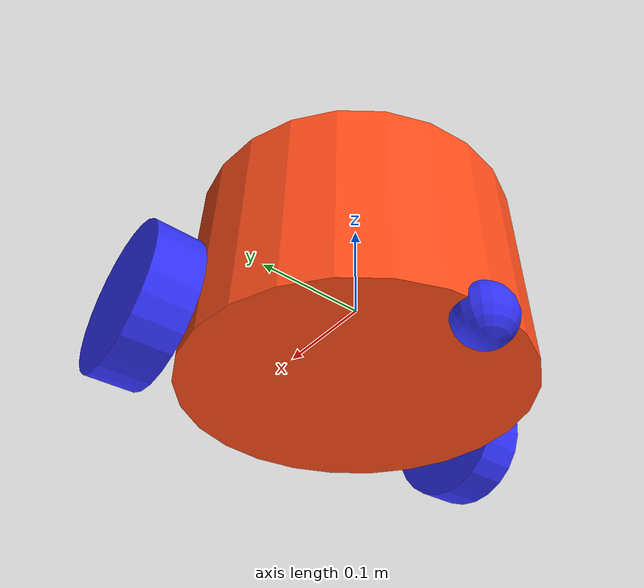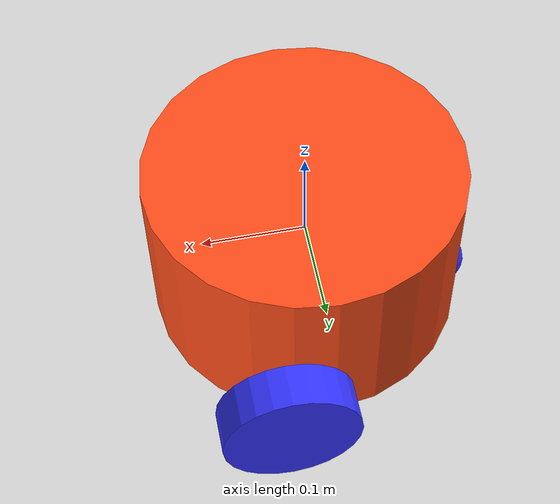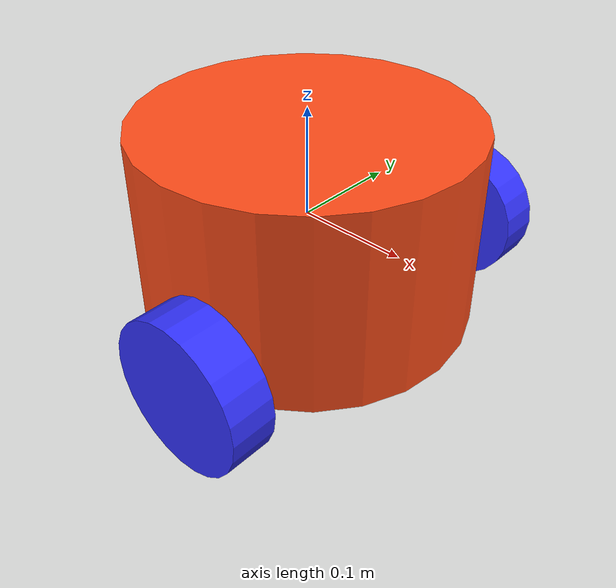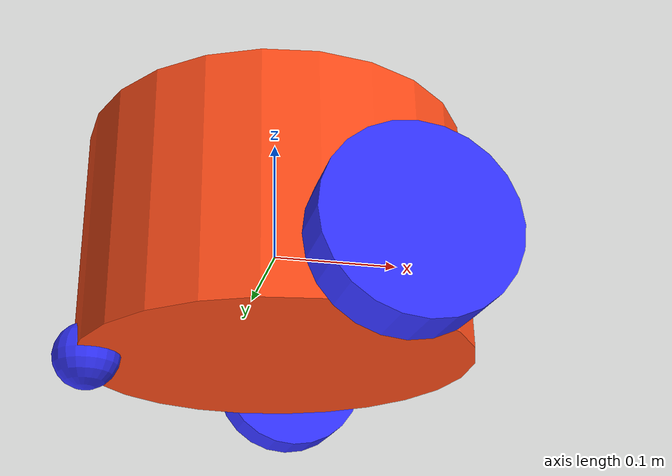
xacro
<?xml version="1.0" ?>
<robot xmlns:xacro="http://ros.org/wiki/xacro">
    <xacro:include filename="robot_constants.xacro" />
    <xacro:include filename="inertial_macros.xacro" />

    <!-- Robot Base -->
    <link name="base_link">
        <visual>
            <geometry>
                <cylinder radius="${base_length/2}" length="${base_height}" />
            </geometry>
            <material name="orange">
                <color rgba="1 0.3 0.1 1" />
            </material>
        </visual>

        <collision>
        <geometry>
            <box size="${base_length/1.25} ${base_width/1.25} ${base_height}" />
        </geometry>
        </collision>

        <xacro:box_inertia
            m="15"
            w="${base_width}"
            d="${base_length}"
            h="${base_height}"
        />
    </link>

    <gazebo reference="base_link">
        <material>Gazebo/Orange</material>
    </gazebo>

    <!-- Robot Footprint -->
    <link name="base_footprint">
        <xacro:box_inertia m="0" w="0" d="0" h="0" />
    </link>

    <joint name="base_joint" type="fixed">
        <parent link="base_link" />
        <child link="base_footprint" />
        <origin xyz="0.0 0.0 ${-(wheel_radius+wheel_zoff)}" rpy="0 0 0" />
    </joint>

    <!-- Wheels -->
    <xacro:macro name="wheel" params="prefix x_reflect y_reflect">
        <link name="${prefix}_link">
        <visual>
            <origin xyz="0 0 0" rpy="${pi/2} 0 0" />
            <geometry>
            <cylinder radius="${wheel_radius}" length="${wheel_width}" />
            </geometry>
            <material name="blue">
                <color rgba="0.2 0.2 1 1" />
            </material>
        </visual>

        <collision>
            <origin xyz="0 0 0" rpy="${pi/2} 0 0" />
            <geometry>
            <sphere radius="${wheel_radius}" />
            </geometry>
        </collision>

        <xacro:cylinder_inertia
                m="0.5"
                r="${wheel_radius}"
                h="${wheel_width}"
            />
        </link>

        <joint name="${prefix}_joint" type="continuous">
        <parent link="base_link" />
        <child link="${prefix}_link" />
        <origin
                xyz="${x_reflect*wheel_xoff} ${y_reflect*(base_width/2+wheel_ygap)} ${-wheel_zoff}"
                rpy="0 0 0"
            />
        <axis xyz="0 1 0" />
        </joint>
    </xacro:macro>

    <xacro:wheel prefix="drivewhl_l" x_reflect="1" y_reflect="1" />
    <xacro:wheel prefix="drivewhl_r" x_reflect="1" y_reflect="-1" />

    <gazebo reference="drivewhl_l_link">
        <material>Gazebo/Blue</material>
    </gazebo>

    <gazebo reference="drivewhl_r_link">
        <material>Gazebo/Blue</material>
    </gazebo>

    <link name="back_caster">
        <visual>
            <geometry>
                <sphere radius="${(wheel_radius+wheel_zoff-(base_height/2))}" />
            </geometry>
            <material name="blue">
                <color rgba="0.2 0.2 1 1" />
            </material>
        </visual>

        <collision>
        <origin xyz="0 0 0" rpy="0 0 0" />
        <geometry>
            <sphere radius="${(wheel_radius+wheel_zoff-(base_height/2))}" />
        </geometry>
        </collision>

        <xacro:sphere_inertia
            m="0.5"
            r="${(wheel_radius+wheel_zoff-(base_height/2))}"
        />
    </link>

    <joint name="caster_joint" type="fixed">
        <parent link="base_link" />
        <child link="back_caster" />
        <origin xyz="-${caster_xoff} 0.0 ${-(base_height/2)}" rpy="0 0 0" />
    </joint>
</robot>

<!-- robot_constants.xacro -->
<robot xmlns:xacro="http://ros.org/wiki/xacro">
    <xacro:property name="base_width" value="0.30" />
    <xacro:property name="base_length" value="0.30" />
    <xacro:property name="base_height" value="0.18" />

    <xacro:property name="wheel_radius" value="0.065" />
    <xacro:property name="wheel_width" value="0.04" />
    <xacro:property name="wheel_ygap" value="0.025" />
    <xacro:property name="wheel_zoff" value="0.05" />
    <xacro:property name="wheel_xoff" value="0.05" />

    <xacro:property name="caster_xoff" value="0.14" />

</robot>

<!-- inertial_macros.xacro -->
<robot xmlns:xacro="http://ros.org/wiki/xacro">
  <xacro:macro name="box_inertia" params="m w h d">
    <inertial>
      <origin xyz="0 0 0" rpy="${pi/2} 0 ${pi/2}" />
      <mass value="${m}" />
      <inertia
                ixx="${(m/12) * (h*h + d*d)}"
                ixy="0.0"
                ixz="0.0"
                iyy="${(m/12) * (w*w + d*d)}"
                iyz="0.0"
                izz="${(m/12) * (w*w + h*h)}"
            />
    </inertial>
  </xacro:macro>

  <xacro:macro name="cylinder_inertia" params="m r h">
    <inertial>
      <origin xyz="0 0 0" rpy="${pi/2} 0 0" />
      <mass value="${m}" />
      <inertia
                ixx="${(m/12) * (3*r*r + h*h)}"
                ixy="0"
                ixz="0"
                iyy="${(m/12) * (3*r*r + h*h)}"
                iyz="0"
                izz="${(m/2) * (r*r)}"
            />
    </inertial>
  </xacro:macro>

  <xacro:macro name="sphere_inertia" params="m r">
    <inertial>
      <mass value="${m}" />
      <inertia
                ixx="${(2/5) * m * (r*r)}"
                ixy="0.0"
                ixz="0.0"
                iyy="${(2/5) * m * (r*r)}"
                iyz="0.0"
                izz="${(2/5) * m * (r*r)}"
            />
    </inertial>
  </xacro:macro>
</robot>
